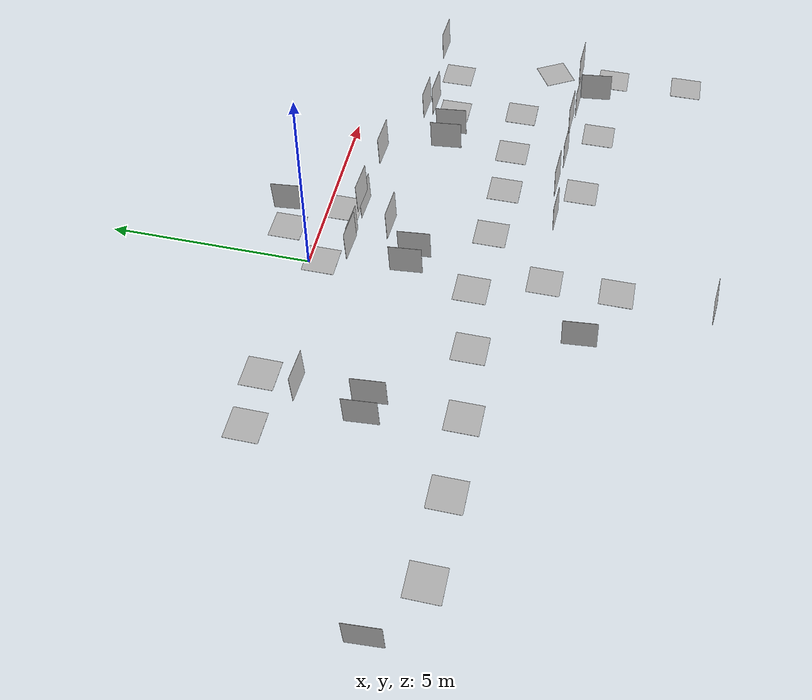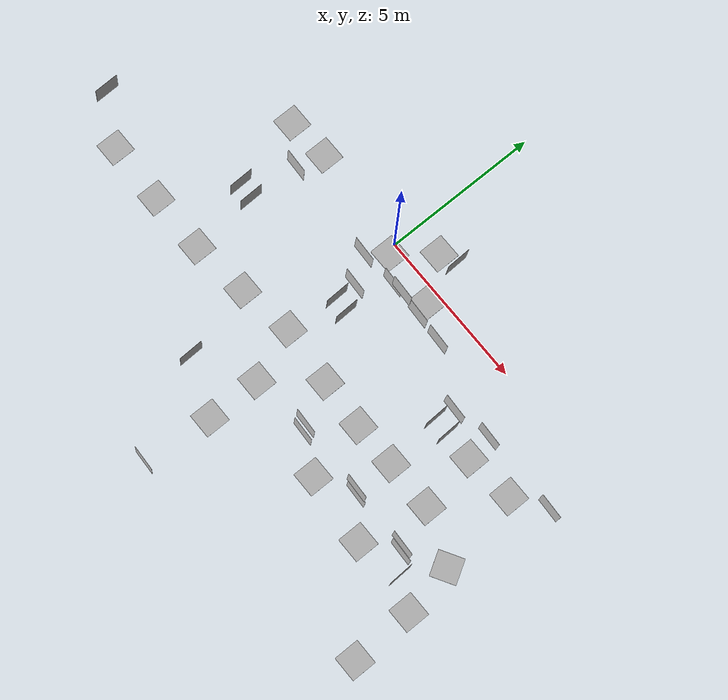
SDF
<sdf version="1.6">
 <world name="factory">
  <model name="deletion_wall">
   <static>1</static>
   <link name="sensing_link">
    <gravity>0</gravity>
    <sensor name="object_disposal_contact" type="contact">
     <update_rate>10</update_rate>
     <contact><collision>collision</collision><topic>__default_topic__</topic></contact>
    </sensor>
    <collision name="collision"><geometry><box><size>0.1 1 1</size></box></geometry></collision>
    <visual name="visual">
     <geometry><box><size>0.1 1 1</size></box></geometry>
     <cast_shadows>0</cast_shadows>
     <transparency>100</transparency>
    </visual>
   </link>
   <plugin name="object_disposal_plugin" filename="libObjectDisposalPlugin.so">
    <contact_sensor_name>object_disposal_contact</contact_sensor_name>
    <contact_side_normal>1 0 0</contact_side_normal>
    <disposal_pose>30 30 0 0 0 0</disposal_pose>
    <update_rate>5</update_rate>
   </plugin>
   <pose>0.199032 -1.08981 0 0 -0 0</pose>
  </model>
  <model name="drone_collection_zone">
   <static>1</static>
   <link name="sensing_link">
    <gravity>0</gravity>
    <sensor name="object_disposal_contact" type="contact">
     <update_rate>10</update_rate>
     <contact><collision>collision</collision><topic>__default_topic__</topic></contact>
    </sensor>
    <collision name="collision"><geometry><box><size>0.1 2 2</size></box></geometry></collision>
   </link>
   <plugin name="object_disposal_plugin" filename="libObjectDisposalPlugin.so">
    <contact_sensor_name>object_disposal_contact</contact_sensor_name>
    <contacting_box_topic>/ariac/waiting_shipping_box</contacting_box_topic>
    <activation_topic>/ariac/drone_collection_zone/activate_deletion</activation_topic>
    <contact_side_normal>1 0 0</contact_side_normal>
    <disposal_pose>-7.5 -10 -0.5 0 0 0</disposal_pose>
    <update_rate>5</update_rate>
   </plugin>
   <pose>-0.093674 -2.00167 0 0 -0 0</pose>
  </model>
  <model name="kalibr_tag">
   <static>1</static>
   <link name="link">
    <inertial>
     <mass>0.1</mass>
     <inertia>
      <ixx>0.000166667</ixx>
      <iyy>0.000166667</iyy>
      <izz>0.000166667</izz>
      <ixy>0</ixy>
      <ixz>0</ixz>
      <iyz>0</iyz>
     </inertia>
    </inertial>
    <collision name="collision"><geometry><box><size>0.8 0.8 0.005</size></box></geometry></collision>
    <visual name="visual">
     <geometry><box><size>0.8 0.8 0.005</size></box></geometry>
     <material>
      <script>
       <uri>model://kalibr_tag/materials/scripts</uri>
       <uri>model://kalibr_tag/materials/textures</uri>
       <name>Kalibr_tag/Diffuse</name>
      </script>
     </material>
    </visual>
   </link>
   <pose>5.29378 -2.45747 0.424913 1.58264 0.057467 1.61346</pose>
  </model>
  <model name="kalibr_tag_clone">
   <static>1</static>
   <link name="link">
    <inertial>
     <mass>0.1</mass>
     <inertia>
      <ixx>0.000166667</ixx>
      <iyy>0.000166667</iyy>
      <izz>0.000166667</izz>
      <ixy>0</ixy>
      <ixz>0</ixz>
      <iyz>0</iyz>
     </inertia>
    </inertial>
    <collision name="collision"><geometry><box><size>0.8 0.8 0.005</size></box></geometry></collision>
    <visual name="visual">
     <geometry><box><size>0.8 0.8 0.005</size></box></geometry>
     <material>
      <script>
       <uri>model://kalibr_tag/materials/scripts</uri>
       <uri>model://kalibr_tag/materials/textures</uri>
       <name>Kalibr_tag/Diffuse</name>
      </script>
     </material>
    </visual>
   </link>
   <pose>-8.97605 -3.60098 0.427439 1.58264 0.057467 1.61346</pose>
  </model>
  <model name="kalibr_tag_clone_clone">
   <static>1</static>
   <link name="link">
    <inertial>
     <mass>0.1</mass>
     <inertia>
      <ixx>0.000166667</ixx>
      <iyy>0.000166667</iyy>
      <izz>0.000166667</izz>
      <ixy>0</ixy>
      <ixz>0</ixz>
      <iyz>0</iyz>
     </inertia>
    </inertial>
    <collision name="collision"><geometry><box><size>0.8 0.8 0.005</size></box></geometry></collision>
    <visual name="visual">
     <geometry><box><size>0.8 0.8 0.005</size></box></geometry>
     <material>
      <script>
       <uri>model://kalibr_tag/materials/scripts</uri>
       <uri>model://kalibr_tag/materials/textures</uri>
       <name>Kalibr_tag/Diffuse</name>
      </script>
     </material>
    </visual>
   </link>
   <pose>-1.11644 -6.6522 0.425339 1.58264 0.057467 1.61346</pose>
  </model>
  <model name="kalibr_tag_clone_0_clone_clone_clone_5">
   <static>1</static>
   <link name="link">
    <inertial>
     <mass>0.1</mass>
     <inertia>
      <ixx>0.000166667</ixx>
      <iyy>0.000166667</iyy>
      <izz>0.000166667</izz>
      <ixy>0</ixy>
      <ixz>0</ixz>
      <iyz>0</iyz>
     </inertia>
    </inertial>
    <collision name="collision"><geometry><box><size>0.8 0.8 0.005</size></box></geometry></collision>
    <visual name="visual">
     <geometry><box><size>0.8 0.8 0.005</size></box></geometry>
     <material>
      <script>
       <uri>model://kalibr_tag/materials/scripts</uri>
       <uri>model://kalibr_tag/materials/textures</uri>
       <name>Kalibr_tag/Diffuse</name>
      </script>
     </material>
    </visual>
   </link>
   <pose>0 -4 -0.000701 0 -0 0</pose>
  </model>
  <model name="kalibr_tag_clone_0_clone_clone_clone_3_clone">
   <static>1</static>
   <link name="link">
    <inertial>
     <mass>0.1</mass>
     <inertia>
      <ixx>0.000166667</ixx>
      <iyy>0.000166667</iyy>
      <izz>0.000166667</izz>
      <ixy>0</ixy>
      <ixz>0</ixz>
      <iyz>0</iyz>
     </inertia>
    </inertial>
    <collision name="collision"><geometry><box><size>0.8 0.8 0.005</size></box></geometry></collision>
    <visual name="visual">
     <geometry><box><size>0.8 0.8 0.005</size></box></geometry>
     <material>
      <script>
       <uri>model://kalibr_tag/materials/scripts</uri>
       <uri>model://kalibr_tag/materials/textures</uri>
       <name>Kalibr_tag/Diffuse</name>
      </script>
     </material>
    </visual>
   </link>
   <pose>7.74657 -2.2262 -0.000701 0 -0 0</pose>
  </model>
  <model name="kalibr_tag_clone_0_clone_clone_clone_3_clone_0">
   <static>1</static>
   <link name="link">
    <inertial>
     <mass>0.1</mass>
     <inertia>
      <ixx>0.000166667</ixx>
      <iyy>0.000166667</iyy>
      <izz>0.000166667</izz>
      <ixy>0</ixy>
      <ixz>0</ixz>
      <iyz>0</iyz>
     </inertia>
    </inertial>
    <collision name="collision"><geometry><box><size>0.8 0.8 0.005</size></box></geometry></collision>
    <visual name="visual">
     <geometry><box><size>0.8 0.8 0.005</size></box></geometry>
     <material>
      <script>
       <uri>model://kalibr_tag/materials/scripts</uri>
       <uri>model://kalibr_tag/materials/textures</uri>
       <name>Kalibr_tag/Diffuse</name>
      </script>
     </material>
    </visual>
   </link>
   <pose>4.90528 -4.20418 -0.000701 0 -0 0</pose>
  </model>
  <model name="kalibr_tag_clone_clone_clone_clone_clone_clone_clone_5">
   <static>1</static>
   <link name="link">
    <inertial>
     <mass>0.1</mass>
     <inertia>
      <ixx>0.000166667</ixx>
      <iyy>0.000166667</iyy>
      <izz>0.000166667</izz>
      <ixy>0</ixy>
      <ixz>0</ixz>
      <iyz>0</iyz>
     </inertia>
    </inertial>
    <collision name="collision"><geometry><box><size>0.8 0.8 0.005</size></box></geometry></collision>
    <visual name="visual">
     <geometry><box><size>0.8 0.8 0.005</size></box></geometry>
     <material>
      <script>
       <uri>model://kalibr_tag/materials/scripts</uri>
       <uri>model://kalibr_tag/materials/textures</uri>
       <name>Kalibr_tag/Diffuse</name>
      </script>
     </material>
    </visual>
   </link>
   <pose>0.473147 -9.60582 0.418062 1.62908 -0.00671 3.09537</pose>
  </model>
  <model name="kalibr_tag_clone_0_clone_clone_clone_clone_12">
   <static>1</static>
   <link name="link">
    <inertial>
     <mass>0.1</mass>
     <inertia>
      <ixx>0.000166667</ixx>
      <iyy>0.000166667</iyy>
      <izz>0.000166667</izz>
      <ixy>0</ixy>
      <ixz>0</ixz>
      <iyz>0</iyz>
     </inertia>
    </inertial>
    <collision name="collision"><geometry><box><size>0.8 0.8 0.005</size></box></geometry></collision>
    <visual name="visual">
     <geometry><box><size>0.8 0.8 0.005</size></box></geometry>
     <material>
      <script>
       <uri>model://kalibr_tag/materials/scripts</uri>
       <uri>model://kalibr_tag/materials/textures</uri>
       <name>Kalibr_tag/Diffuse</name>
      </script>
     </material>
    </visual>
   </link>
   <pose>1.87838 -4.14794 -0.000701 0 -0 0</pose>
  </model>
  <model name="kalibr_tag_clone_0_clone_clone_clone_14_clone_0_clone_1">
   <static>1</static>
   <link name="link">
    <inertial>
     <mass>0.1</mass>
     <inertia>
      <ixx>0.000166667</ixx>
      <iyy>0.000166667</iyy>
      <izz>0.000166667</izz>
      <ixy>0</ixy>
      <ixz>0</ixz>
      <iyz>0</iyz>
     </inertia>
    </inertial>
    <collision name="collision"><geometry><box><size>0.8 0.8 0.005</size></box></geometry></collision>
    <visual name="visual">
     <geometry><box><size>0.8 0.8 0.005</size></box></geometry>
     <material>
      <script>
       <uri>model://kalibr_tag/materials/scripts</uri>
       <uri>model://kalibr_tag/materials/textures</uri>
       <name>Kalibr_tag/Diffuse</name>
      </script>
     </material>
    </visual>
   </link>
   <pose>1.03293 0.830599 0.008694 0 -0 0</pose>
  </model>
  <model name="kalibr_tag_clone_0_clone_clone_clone_clone_10_clone_0">
   <static>1</static>
   <link name="link">
    <inertial>
     <mass>0.1</mass>
     <inertia>
      <ixx>0.000166667</ixx>
      <iyy>0.000166667</iyy>
      <izz>0.000166667</izz>
      <ixy>0</ixy>
      <ixz>0</ixz>
      <iyz>0</iyz>
     </inertia>
    </inertial>
    <collision name="collision"><geometry><box><size>0.8 0.8 0.005</size></box></geometry></collision>
    <visual name="visual">
     <geometry><box><size>0.8 0.8 0.005</size></box></geometry>
     <material>
      <script>
       <uri>model://kalibr_tag/materials/scripts</uri>
       <uri>model://kalibr_tag/materials/textures</uri>
       <name>Kalibr_tag/Diffuse</name>
      </script>
     </material>
    </visual>
   </link>
   <pose>8.45464 -6.51419 -0.000701 0 -0 0</pose>
  </model>
  <model name="kalibr_tag_clone_0_clone_clone_clone_clone_10_clone_17">
   <static>1</static>
   <link name="link">
    <inertial>
     <mass>0.1</mass>
     <inertia>
      <ixx>0.000166667</ixx>
      <iyy>0.000166667</iyy>
      <izz>0.000166667</izz>
      <ixy>0</ixy>
      <ixz>0</ixz>
      <iyz>0</iyz>
     </inertia>
    </inertial>
    <collision name="collision"><geometry><box><size>0.8 0.8 0.005</size></box></geometry></collision>
    <visual name="visual">
     <geometry><box><size>0.8 0.8 0.005</size></box></geometry>
     <material>
      <script>
       <uri>model://kalibr_tag/materials/scripts</uri>
       <uri>model://kalibr_tag/materials/textures</uri>
       <name>Kalibr_tag/Diffuse</name>
      </script>
     </material>
    </visual>
   </link>
   <pose>6.19945 -2.3997 -0.000701 0 -0 0</pose>
  </model>
  <model name="kalibr_tag_clone_0_clone_clone_clone_clone_10_clone_18">
   <static>1</static>
   <link name="link">
    <inertial>
     <mass>0.1</mass>
     <inertia>
      <ixx>0.000166667</ixx>
      <iyy>0.000166667</iyy>
      <izz>0.000166667</izz>
      <ixy>0</ixy>
      <ixz>0</ixz>
      <iyz>0</iyz>
     </inertia>
    </inertial>
    <collision name="collision"><geometry><box><size>0.8 0.8 0.005</size></box></geometry></collision>
    <visual name="visual">
     <geometry><box><size>0.8 0.8 0.005</size></box></geometry>
     <material>
      <script>
       <uri>model://kalibr_tag/materials/scripts</uri>
       <uri>model://kalibr_tag/materials/textures</uri>
       <name>Kalibr_tag/Diffuse</name>
      </script>
     </material>
    </visual>
   </link>
   <pose>6.48025 -4.21009 -0.000701 0 -0 0</pose>
  </model>
  <model name="kalibr_tag_clone_0_clone_clone_clone_clone_10_clone_19">
   <static>1</static>
   <link name="link">
    <inertial>
     <mass>0.1</mass>
     <inertia>
      <ixx>0.000166667</ixx>
      <iyy>0.000166667</iyy>
      <izz>0.000166667</izz>
      <ixy>0</ixy>
      <ixz>0</ixz>
      <iyz>0</iyz>
     </inertia>
    </inertial>
    <collision name="collision"><geometry><box><size>0.8 0.8 0.005</size></box></geometry></collision>
    <visual name="visual">
     <geometry><box><size>0.8 0.8 0.005</size></box></geometry>
     <material>
      <script>
       <uri>model://kalibr_tag/materials/scripts</uri>
       <uri>model://kalibr_tag/materials/textures</uri>
       <name>Kalibr_tag/Diffuse</name>
      </script>
     </material>
    </visual>
   </link>
   <pose>3.46983 -4.22858 -0.000701 0 -0 0</pose>
  </model>
  <model name="kalibr_tag_clone_0_clone_clone_clone_clone_10_clone_20">
   <static>1</static>
   <link name="link">
    <inertial>
     <mass>0.1</mass>
     <inertia>
      <ixx>0.000166667</ixx>
      <iyy>0.000166667</iyy>
      <izz>0.000166667</izz>
      <ixy>0</ixy>
      <ixz>0</ixz>
      <iyz>0</iyz>
     </inertia>
    </inertial>
    <collision name="collision"><geometry><box><size>0.8 0.8 0.005</size></box></geometry></collision>
    <visual name="visual">
     <geometry><box><size>0.8 0.8 0.005</size></box></geometry>
     <material>
      <script>
       <uri>model://kalibr_tag/materials/scripts</uri>
       <uri>model://kalibr_tag/materials/textures</uri>
       <name>Kalibr_tag/Diffuse</name>
      </script>
     </material>
    </visual>
   </link>
   <pose>0.616517 -5.65644 -0.000701 0 -0 0</pose>
  </model>
  <model name="kalibr_tag_clone_0_clone_clone_clone_clone_10_clone_21">
   <static>1</static>
   <link name="link">
    <inertial>
     <mass>0.1</mass>
     <inertia>
      <ixx>0.000166667</ixx>
      <iyy>0.000166667</iyy>
      <izz>0.000166667</izz>
      <ixy>0</ixy>
      <ixz>0</ixz>
      <iyz>0</iyz>
     </inertia>
    </inertial>
    <collision name="collision"><geometry><box><size>0.8 0.8 0.005</size></box></geometry></collision>
    <visual name="visual">
     <geometry><box><size>0.8 0.8 0.005</size></box></geometry>
     <material>
      <script>
       <uri>model://kalibr_tag/materials/scripts</uri>
       <uri>model://kalibr_tag/materials/textures</uri>
       <name>Kalibr_tag/Diffuse</name>
      </script>
     </material>
    </visual>
   </link>
   <pose>0.615437 -7.37455 -0.000701 0 -0 0</pose>
  </model>
  <model name="kalibr_tag_clone_0_clone_clone_clone_clone_10_clone_22">
   <static>1</static>
   <link name="link">
    <inertial>
     <mass>0.1</mass>
     <inertia>
      <ixx>0.000166667</ixx>
      <iyy>0.000166667</iyy>
      <izz>0.000166667</izz>
      <ixy>0</ixy>
      <ixz>0</ixz>
      <iyz>0</iyz>
     </inertia>
    </inertial>
    <collision name="collision"><geometry><box><size>0.8 0.8 0.005</size></box></geometry></collision>
    <visual name="visual">
     <geometry><box><size>0.8 0.8 0.005</size></box></geometry>
     <material>
      <script>
       <uri>model://kalibr_tag/materials/scripts</uri>
       <uri>model://kalibr_tag/materials/textures</uri>
       <name>Kalibr_tag/Diffuse</name>
      </script>
     </material>
    </visual>
   </link>
   <pose>-1.73683 -4.2916 -0.000701 0 -0 0</pose>
  </model>
  <model name="kalibr_tag_clone_0_clone_clone_clone_clone_10_clone_23">
   <static>1</static>
   <link name="link">
    <inertial>
     <mass>0.1</mass>
     <inertia>
      <ixx>0.000166667</ixx>
      <iyy>0.000166667</iyy>
      <izz>0.000166667</izz>
      <ixy>0</ixy>
      <ixz>0</ixz>
      <iyz>0</iyz>
     </inertia>
    </inertial>
    <collision name="collision"><geometry><box><size>0.8 0.8 0.005</size></box></geometry></collision>
    <visual name="visual">
     <geometry><box><size>0.8 0.8 0.005</size></box></geometry>
     <material>
      <script>
       <uri>model://kalibr_tag/materials/scripts</uri>
       <uri>model://kalibr_tag/materials/textures</uri>
       <name>Kalibr_tag/Diffuse</name>
      </script>
     </material>
    </visual>
   </link>
   <pose>-3.60829 -4.49725 -0.000701 0 -0 0</pose>
  </model>
  <model name="kalibr_tag_clone_0_clone_clone_clone_clone_10_clone_24">
   <static>1</static>
   <link name="link">
    <inertial>
     <mass>0.1</mass>
     <inertia>
      <ixx>0.000166667</ixx>
      <iyy>0.000166667</iyy>
      <izz>0.000166667</izz>
      <ixy>0</ixy>
      <ixz>0</ixz>
      <iyz>0</iyz>
     </inertia>
    </inertial>
    <collision name="collision"><geometry><box><size>0.8 0.8 0.005</size></box></geometry></collision>
    <visual name="visual">
     <geometry><box><size>0.8 0.8 0.005</size></box></geometry>
     <material>
      <script>
       <uri>model://kalibr_tag/materials/scripts</uri>
       <uri>model://kalibr_tag/materials/textures</uri>
       <name>Kalibr_tag/Diffuse</name>
      </script>
     </material>
    </visual>
   </link>
   <pose>-5.52461 -4.51224 -0.000701 0 -0 0</pose>
  </model>
  <model name="kalibr_tag_clone_0_clone_clone_clone_clone_10_clone_25">
   <static>1</static>
   <link name="link">
    <inertial>
     <mass>0.1</mass>
     <inertia>
      <ixx>0.000166667</ixx>
      <iyy>0.000166667</iyy>
      <izz>0.000166667</izz>
      <ixy>0</ixy>
      <ixz>0</ixz>
      <iyz>0</iyz>
     </inertia>
    </inertial>
    <collision name="collision"><geometry><box><size>0.8 0.8 0.005</size></box></geometry></collision>
    <visual name="visual">
     <geometry><box><size>0.8 0.8 0.005</size></box></geometry>
     <material>
      <script>
       <uri>model://kalibr_tag/materials/scripts</uri>
       <uri>model://kalibr_tag/materials/textures</uri>
       <name>Kalibr_tag/Diffuse</name>
      </script>
     </material>
    </visual>
   </link>
   <pose>-7.50883 -4.47579 -0.000701 0 -0 0</pose>
  </model>
  <model name="kalibr_tag_clone_0_clone_clone_clone_clone_10_clone_26">
   <static>1</static>
   <link name="link">
    <inertial>
     <mass>0.1</mass>
     <inertia>
      <ixx>0.000166667</ixx>
      <iyy>0.000166667</iyy>
      <izz>0.000166667</izz>
      <ixy>0</ixy>
      <ixz>0</ixz>
      <iyz>0</iyz>
     </inertia>
    </inertial>
    <collision name="collision"><geometry><box><size>0.8 0.8 0.005</size></box></geometry></collision>
    <visual name="visual">
     <geometry><box><size>0.8 0.8 0.005</size></box></geometry>
     <material>
      <script>
       <uri>model://kalibr_tag/materials/scripts</uri>
       <uri>model://kalibr_tag/materials/textures</uri>
       <name>Kalibr_tag/Diffuse</name>
      </script>
     </material>
    </visual>
   </link>
   <pose>3.80341 -6.15471 -0.000701 0 -0 0</pose>
  </model>
  <model name="kalibr_tag_clone_0_clone_clone_clone_clone_10_clone_27">
   <static>1</static>
   <link name="link">
    <inertial>
     <mass>0.1</mass>
     <inertia>
      <ixx>0.000166667</ixx>
      <iyy>0.000166667</iyy>
      <izz>0.000166667</izz>
      <ixy>0</ixy>
      <ixz>0</ixz>
      <iyz>0</iyz>
     </inertia>
    </inertial>
    <collision name="collision"><geometry><box><size>0.8 0.8 0.005</size></box></geometry></collision>
    <visual name="visual">
     <geometry><box><size>0.8 0.8 0.005</size></box></geometry>
     <material>
      <script>
       <uri>model://kalibr_tag/materials/scripts</uri>
       <uri>model://kalibr_tag/materials/textures</uri>
       <name>Kalibr_tag/Diffuse</name>
      </script>
     </material>
    </visual>
   </link>
   <pose>6.04403 -6.34803 -0.000701 0 -0 0</pose>
  </model>
  <model name="kalibr_tag_clone_0_clone_clone_clone_clone_10_clone_1_clone">
   <static>1</static>
   <link name="link">
    <inertial>
     <mass>0.1</mass>
     <inertia>
      <ixx>0.000166667</ixx>
      <iyy>0.000166667</iyy>
      <izz>0.000166667</izz>
      <ixy>0</ixy>
      <ixz>0</ixz>
      <iyz>0</iyz>
     </inertia>
    </inertial>
    <collision name="collision"><geometry><box><size>0.8 0.8 0.005</size></box></geometry></collision>
    <visual name="visual">
     <geometry><box><size>0.8 0.8 0.005</size></box></geometry>
     <material>
      <script>
       <uri>model://kalibr_tag/materials/scripts</uri>
       <uri>model://kalibr_tag/materials/textures</uri>
       <name>Kalibr_tag/Diffuse</name>
      </script>
     </material>
    </visual>
   </link>
   <pose>8.53271 -8.51507 -0.000701 0 -0 0</pose>
  </model>
  <model name="kalibr_tag_clone_clone_clone_clone_clone_clone_clone_2_clone_clone_0">
   <static>1</static>
   <link name="link">
    <inertial>
     <mass>0.1</mass>
     <inertia>
      <ixx>0.000166667</ixx>
      <iyy>0.000166667</iyy>
      <izz>0.000166667</izz>
      <ixy>0</ixy>
      <ixz>0</ixz>
      <iyz>0</iyz>
     </inertia>
    </inertial>
    <collision name="collision"><geometry><box><size>0.8 0.8 0.005</size></box></geometry></collision>
    <visual name="visual">
     <geometry><box><size>0.8 0.8 0.005</size></box></geometry>
     <material>
      <script>
       <uri>model://kalibr_tag/materials/scripts</uri>
       <uri>model://kalibr_tag/materials/textures</uri>
       <name>Kalibr_tag/Diffuse</name>
      </script>
     </material>
    </visual>
   </link>
   <pose>8.73948 -1.64008 0.425094 1.62908 -0.00671 3.09537</pose>
  </model>
  <model name="kalibr_tag_clone_clone_clone_clone_clone_clone_clone_2_clone_clone_1">
   <static>1</static>
   <link name="link">
    <inertial>
     <mass>0.1</mass>
     <inertia>
      <ixx>0.000166667</ixx>
      <iyy>0.000166667</iyy>
      <izz>0.000166667</izz>
      <ixy>0</ixy>
      <ixz>0</ixz>
      <iyz>0</iyz>
     </inertia>
    </inertial>
    <collision name="collision"><geometry><box><size>0.8 0.8 0.005</size></box></geometry></collision>
    <visual name="visual">
     <geometry><box><size>0.8 0.8 0.005</size></box></geometry>
     <material>
      <script>
       <uri>model://kalibr_tag/materials/scripts</uri>
       <uri>model://kalibr_tag/materials/textures</uri>
       <name>Kalibr_tag/Diffuse</name>
      </script>
     </material>
    </visual>
   </link>
   <pose>6.0988 -1.62713 0.425094 1.62908 -0.00671 3.09537</pose>
  </model>
  <model name="kalibr_tag_clone_0">
   <static>1</static>
   <link name="link">
    <inertial>
     <mass>0.1</mass>
     <inertia>
      <ixx>0.000166667</ixx>
      <iyy>0.000166667</iyy>
      <izz>0.000166667</izz>
      <ixy>0</ixy>
      <ixz>0</ixz>
      <iyz>0</iyz>
     </inertia>
    </inertial>
    <collision name="collision"><geometry><box><size>0.8 0.8 0.005</size></box></geometry></collision>
    <visual name="visual">
     <geometry><box><size>0.8 0.8 0.005</size></box></geometry>
     <material>
      <script>
       <uri>model://kalibr_tag/materials/scripts</uri>
       <uri>model://kalibr_tag/materials/textures</uri>
       <name>Kalibr_tag/Diffuse</name>
      </script>
     </material>
    </visual>
   </link>
   <pose>4.72554 -2.42704 0.424913 1.58264 0.057467 1.61346</pose>
  </model>
  <model name="kalibr_tag_clone_1">
   <static>1</static>
   <link name="link">
    <inertial>
     <mass>0.1</mass>
     <inertia>
      <ixx>0.000166667</ixx>
      <iyy>0.000166667</iyy>
      <izz>0.000166667</izz>
      <ixy>0</ixy>
      <ixz>0</ixz>
      <iyz>0</iyz>
     </inertia>
    </inertial>
    <collision name="collision"><geometry><box><size>0.8 0.8 0.005</size></box></geometry></collision>
    <visual name="visual">
     <geometry><box><size>0.8 0.8 0.005</size></box></geometry>
     <material>
      <script>
       <uri>model://kalibr_tag/materials/scripts</uri>
       <uri>model://kalibr_tag/materials/textures</uri>
       <name>Kalibr_tag/Diffuse</name>
      </script>
     </material>
    </visual>
   </link>
   <pose>0.741059 -2.44126 0.424913 1.58264 0.057467 1.61346</pose>
  </model>
  <model name="kalibr_tag_clone_2">
   <static>1</static>
   <link name="link">
    <inertial>
     <mass>0.1</mass>
     <inertia>
      <ixx>0.000166667</ixx>
      <iyy>0.000166667</iyy>
      <izz>0.000166667</izz>
      <ixy>0</ixy>
      <ixz>0</ixz>
      <iyz>0</iyz>
     </inertia>
    </inertial>
    <collision name="collision"><geometry><box><size>0.8 0.8 0.005</size></box></geometry></collision>
    <visual name="visual">
     <geometry><box><size>0.8 0.8 0.005</size></box></geometry>
     <material>
      <script>
       <uri>model://kalibr_tag/materials/scripts</uri>
       <uri>model://kalibr_tag/materials/textures</uri>
       <name>Kalibr_tag/Diffuse</name>
      </script>
     </material>
    </visual>
   </link>
   <pose>0.206201 -2.34565 0.424913 1.58264 0.057467 1.61346</pose>
  </model>
  <model name="kalibr_tag_clone_3">
   <static>1</static>
   <link name="link">
    <inertial>
     <mass>0.1</mass>
     <inertia>
      <ixx>0.000166667</ixx>
      <iyy>0.000166667</iyy>
      <izz>0.000166667</izz>
      <ixy>0</ixy>
      <ixz>0</ixz>
      <iyz>0</iyz>
     </inertia>
    </inertial>
    <collision name="collision"><geometry><box><size>0.8 0.8 0.005</size></box></geometry></collision>
    <visual name="visual">
     <geometry><box><size>0.8 0.8 0.005</size></box></geometry>
     <material>
      <script>
       <uri>model://kalibr_tag/materials/scripts</uri>
       <uri>model://kalibr_tag/materials/textures</uri>
       <name>Kalibr_tag/Diffuse</name>
      </script>
     </material>
    </visual>
   </link>
   <pose>-3.66917 -2.40516 0.424913 1.58264 0.057467 1.61346</pose>
  </model>
  <model name="kalibr_tag_clone_4">
   <static>1</static>
   <link name="link">
    <inertial>
     <mass>0.1</mass>
     <inertia>
      <ixx>0.000166667</ixx>
      <iyy>0.000166667</iyy>
      <izz>0.000166667</izz>
      <ixy>0</ixy>
      <ixz>0</ixz>
      <iyz>0</iyz>
     </inertia>
    </inertial>
    <collision name="collision"><geometry><box><size>0.8 0.8 0.005</size></box></geometry></collision>
    <visual name="visual">
     <geometry><box><size>0.8 0.8 0.005</size></box></geometry>
     <material>
      <script>
       <uri>model://kalibr_tag/materials/scripts</uri>
       <uri>model://kalibr_tag/materials/textures</uri>
       <name>Kalibr_tag/Diffuse</name>
      </script>
     </material>
    </visual>
   </link>
   <pose>-4.21677 -2.35283 0.424913 1.58264 0.057467 1.61346</pose>
  </model>
  <model name="kalibr_tag_clone_clone_clone_clone_clone_clone_clone_0_clone_clone_3">
   <static>1</static>
   <link name="link">
    <inertial>
     <mass>0.1</mass>
     <inertia>
      <ixx>0.000166667</ixx>
      <iyy>0.000166667</iyy>
      <izz>0.000166667</izz>
      <ixy>0</ixy>
      <ixz>0</ixz>
      <iyz>0</iyz>
     </inertia>
    </inertial>
    <collision name="collision"><geometry><box><size>0.8 0.8 0.005</size></box></geometry></collision>
    <visual name="visual">
     <geometry><box><size>0.8 0.8 0.005</size></box></geometry>
     <material>
      <script>
       <uri>model://kalibr_tag/materials/scripts</uri>
       <uri>model://kalibr_tag/materials/textures</uri>
       <name>Kalibr_tag/Diffuse</name>
      </script>
     </material>
    </visual>
   </link>
   <pose>2.70935 -5.53491 1.57688 1.62908 -0.00671 3.09537</pose>
  </model>
  <model name="kalibr_tag_clone_clone_clone_clone_clone_clone_clone_0_clone_clone_4">
   <static>1</static>
   <link name="link">
    <inertial>
     <mass>0.1</mass>
     <inertia>
      <ixx>0.000166667</ixx>
      <iyy>0.000166667</iyy>
      <izz>0.000166667</izz>
      <ixy>0</ixy>
      <ixz>0</ixz>
      <iyz>0</iyz>
     </inertia>
    </inertial>
    <collision name="collision"><geometry><box><size>0.8 0.8 0.005</size></box></geometry></collision>
    <visual name="visual">
     <geometry><box><size>0.8 0.8 0.005</size></box></geometry>
     <material>
      <script>
       <uri>model://kalibr_tag/materials/scripts</uri>
       <uri>model://kalibr_tag/materials/textures</uri>
       <name>Kalibr_tag/Diffuse</name>
      </script>
     </material>
    </visual>
   </link>
   <pose>4.98761 -5.57645 0.418062 1.62908 -0.00671 3.09537</pose>
  </model>
  <model name="kalibr_tag_clone_clone_clone_clone_clone_clone_clone_0_clone_clone_5">
   <static>1</static>
   <link name="link">
    <inertial>
     <mass>0.1</mass>
     <inertia>
      <ixx>0.000166667</ixx>
      <iyy>0.000166667</iyy>
      <izz>0.000166667</izz>
      <ixy>0</ixy>
      <ixz>0</ixz>
      <iyz>0</iyz>
     </inertia>
    </inertial>
    <collision name="collision"><geometry><box><size>0.8 0.8 0.005</size></box></geometry></collision>
    <visual name="visual">
     <geometry><box><size>0.8 0.8 0.005</size></box></geometry>
     <material>
      <script>
       <uri>model://kalibr_tag/materials/scripts</uri>
       <uri>model://kalibr_tag/materials/textures</uri>
       <name>Kalibr_tag/Diffuse</name>
      </script>
     </material>
    </visual>
   </link>
   <pose>7.03289 -5.6406 0.418062 1.62908 -0.00671 3.09537</pose>
  </model>
  <model name="kalibr_tag_clone_0_clone_clone_clone_clone_10_clone_18_clone">
   <static>1</static>
   <link name="link">
    <inertial>
     <mass>0.1</mass>
     <inertia>
      <ixx>0.000166667</ixx>
      <iyy>0.000166667</iyy>
      <izz>0.000166667</izz>
      <ixy>0</ixy>
      <ixz>0</ixz>
      <iyz>0</iyz>
     </inertia>
    </inertial>
    <collision name="collision"><geometry><box><size>0.8 0.8 0.005</size></box></geometry></collision>
    <visual name="visual">
     <geometry><box><size>0.8 0.8 0.005</size></box></geometry>
     <material>
      <script>
       <uri>model://kalibr_tag/materials/scripts</uri>
       <uri>model://kalibr_tag/materials/textures</uri>
       <name>Kalibr_tag/Diffuse</name>
      </script>
     </material>
    </visual>
   </link>
   <pose>8.17888 -4.89131 0.151521 0 -0 0.53317</pose>
  </model>
  <model name="kalibr_tag_clone_clone_clone_clone_clone_1_clone_clone_0_clone_1_clone">
   <static>1</static>
   <link name="link">
    <inertial>
     <mass>0.1</mass>
     <inertia>
      <ixx>0.000166667</ixx>
      <iyy>0.000166667</iyy>
      <izz>0.000166667</izz>
      <ixy>0</ixy>
      <ixz>0</ixz>
      <iyz>0</iyz>
     </inertia>
    </inertial>
    <collision name="collision"><geometry><box><size>0.8 0.8 0.005</size></box></geometry></collision>
    <visual name="visual">
     <geometry><box><size>0.8 0.8 0.005</size></box></geometry>
     <material>
      <script>
       <uri>model://kalibr_tag/materials/scripts</uri>
       <uri>model://kalibr_tag/materials/textures</uri>
       <name>Kalibr_tag/Diffuse</name>
      </script>
     </material>
    </visual>
   </link>
   <pose>7.52958 -6.07041 0.42669 1.58264 0.057467 1.61346</pose>
  </model>
  <model name="kalibr_tag_clone_clone_clone_clone_clone_clone_clone_0_clone_0_clone_clone">
   <static>1</static>
   <link name="link">
    <inertial>
     <mass>0.1</mass>
     <inertia>
      <ixx>0.000166667</ixx>
      <iyy>0.000166667</iyy>
      <izz>0.000166667</izz>
      <ixy>0</ixy>
      <ixz>0</ixz>
      <iyz>0</iyz>
     </inertia>
    </inertial>
    <collision name="collision"><geometry><box><size>0.8 0.8 0.005</size></box></geometry></collision>
    <visual name="visual">
     <geometry><box><size>0.8 0.8 0.005</size></box></geometry>
     <material>
      <script>
       <uri>model://kalibr_tag/materials/scripts</uri>
       <uri>model://kalibr_tag/materials/textures</uri>
       <name>Kalibr_tag/Diffuse</name>
      </script>
     </material>
    </visual>
   </link>
   <pose>0.920366 -0.850271 0.418062 1.62908 -0.00671 3.09537</pose>
  </model>
  <model name="kalibr_tag_clone_clone_clone_clone_clone_clone_clone_0_clone_0_clone_clone_0">
   <static>1</static>
   <link name="link">
    <inertial>
     <mass>0.1</mass>
     <inertia>
      <ixx>0.000166667</ixx>
      <iyy>0.000166667</iyy>
      <izz>0.000166667</izz>
      <ixy>0</ixy>
      <ixz>0</ixz>
      <iyz>0</iyz>
     </inertia>
    </inertial>
    <collision name="collision"><geometry><box><size>0.8 0.8 0.005</size></box></geometry></collision>
    <visual name="visual">
     <geometry><box><size>0.8 0.8 0.005</size></box></geometry>
     <material>
      <script>
       <uri>model://kalibr_tag/materials/scripts</uri>
       <uri>model://kalibr_tag/materials/textures</uri>
       <name>Kalibr_tag/Diffuse</name>
      </script>
     </material>
    </visual>
   </link>
   <pose>-3.60577 -0.776587 0.418062 1.62908 -0.00671 3.09537</pose>
  </model>
  <model name="kalibr_tag_clone_0_clone_clone_clone_13_clone">
   <static>1</static>
   <link name="link">
    <inertial>
     <mass>0.1</mass>
     <inertia>
      <ixx>0.000166667</ixx>
      <iyy>0.000166667</iyy>
      <izz>0.000166667</izz>
      <ixy>0</ixy>
      <ixz>0</ixz>
      <iyz>0</iyz>
     </inertia>
    </inertial>
    <collision name="collision"><geometry><box><size>0.8 0.8 0.005</size></box></geometry></collision>
    <visual name="visual">
     <geometry><box><size>0.8 0.8 0.005</size></box></geometry>
     <material>
      <script>
       <uri>model://kalibr_tag/materials/scripts</uri>
       <uri>model://kalibr_tag/materials/textures</uri>
       <name>Kalibr_tag/Diffuse</name>
      </script>
     </material>
    </visual>
   </link>
   <pose>-3.4257 0.142816 -0.000701 0 -0 0</pose>
  </model>
  <model name="kalibr_tag_clone_0_clone_clone_clone_13_clone_0">
   <static>1</static>
   <link name="link">
    <inertial>
     <mass>0.1</mass>
     <inertia>
      <ixx>0.000166667</ixx>
      <iyy>0.000166667</iyy>
      <izz>0.000166667</izz>
      <ixy>0</ixy>
      <ixz>0</ixz>
      <iyz>0</iyz>
     </inertia>
    </inertial>
    <collision name="collision"><geometry><box><size>0.8 0.8 0.005</size></box></geometry></collision>
    <visual name="visual">
     <geometry><box><size>0.8 0.8 0.005</size></box></geometry>
     <material>
      <script>
       <uri>model://kalibr_tag/materials/scripts</uri>
       <uri>model://kalibr_tag/materials/textures</uri>
       <name>Kalibr_tag/Diffuse</name>
      </script>
     </material>
    </visual>
   </link>
   <pose>-4.80645 0.049478 -0.000701 0 -0 0</pose>
  </model>
  <model name="kalibr_tag_clone_clone_clone_clone_clone_1_clone_clone_0_clone_clone_1">
   <static>1</static>
   <link name="link">
    <inertial>
     <mass>0.1</mass>
     <inertia>
      <ixx>0.000166667</ixx>
      <iyy>0.000166667</iyy>
      <izz>0.000166667</izz>
      <ixy>0</ixy>
      <ixz>0</ixz>
      <iyz>0</iyz>
     </inertia>
    </inertial>
    <collision name="collision"><geometry><box><size>0.8 0.8 0.005</size></box></geometry></collision>
    <visual name="visual">
     <geometry><box><size>0.8 0.8 0.005</size></box></geometry>
     <material>
      <script>
       <uri>model://kalibr_tag/materials/scripts</uri>
       <uri>model://kalibr_tag/materials/textures</uri>
       <name>Kalibr_tag/Diffuse</name>
      </script>
     </material>
    </visual>
   </link>
   <pose>1.62931 0.974584 0.42669 1.58264 0.057467 1.61346</pose>
  </model>
  <model name="kalibr_tag_clone_clone_clone_clone_clone_clone_clone_0_clone_clone_4_clone">
   <static>1</static>
   <link name="link">
    <inertial>
     <mass>0.1</mass>
     <inertia>
      <ixx>0.000166667</ixx>
      <iyy>0.000166667</iyy>
      <izz>0.000166667</izz>
      <ixy>0</ixy>
      <ixz>0</ixz>
      <iyz>0</iyz>
     </inertia>
    </inertial>
    <collision name="collision"><geometry><box><size>0.8 0.8 0.005</size></box></geometry></collision>
    <visual name="visual">
     <geometry><box><size>0.8 0.8 0.005</size></box></geometry>
     <material>
      <script>
       <uri>model://kalibr_tag/materials/scripts</uri>
       <uri>model://kalibr_tag/materials/textures</uri>
       <name>Kalibr_tag/Diffuse</name>
      </script>
     </material>
    </visual>
   </link>
   <pose>2.6624 -5.61464 0.418062 1.62908 -0.00671 3.09537</pose>
  </model>
  <model name="kalibr_tag_clone_clone_clone_clone_clone_clone_clone_0_clone_clone_3_clone">
   <static>1</static>
   <link name="link">
    <inertial>
     <mass>0.1</mass>
     <inertia>
      <ixx>0.000166667</ixx>
      <iyy>0.000166667</iyy>
      <izz>0.000166667</izz>
      <ixy>0</ixy>
      <ixz>0</ixz>
      <iyz>0</iyz>
     </inertia>
    </inertial>
    <collision name="collision"><geometry><box><size>0.8 0.8 0.005</size></box></geometry></collision>
    <visual name="visual">
     <geometry><box><size>0.8 0.8 0.005</size></box></geometry>
     <material>
      <script>
       <uri>model://kalibr_tag/materials/scripts</uri>
       <uri>model://kalibr_tag/materials/textures</uri>
       <name>Kalibr_tag/Diffuse</name>
      </script>
     </material>
    </visual>
   </link>
   <pose>4.99275 -5.58975 1.57688 1.62908 -0.00671 3.09537</pose>
  </model>
  <model name="kalibr_tag_clone_clone_clone_clone_clone_clone_clone_0_clone_clone_3_clone_0">
   <static>1</static>
   <link name="link">
    <inertial>
     <mass>0.1</mass>
     <inertia>
      <ixx>0.000166667</ixx>
      <iyy>0.000166667</iyy>
      <izz>0.000166667</izz>
      <ixy>0</ixy>
      <ixz>0</ixz>
      <iyz>0</iyz>
     </inertia>
    </inertial>
    <collision name="collision"><geometry><box><size>0.8 0.8 0.005</size></box></geometry></collision>
    <visual name="visual">
     <geometry><box><size>0.8 0.8 0.005</size></box></geometry>
     <material>
      <script>
       <uri>model://kalibr_tag/materials/scripts</uri>
       <uri>model://kalibr_tag/materials/textures</uri>
       <name>Kalibr_tag/Diffuse</name>
      </script>
     </material>
    </visual>
   </link>
   <pose>6.98219 -5.61979 1.57688 1.62908 -0.00671 3.09537</pose>
  </model>
  <model name="kalibr_tag_clone_clone_clone_clone_clone_clone_clone_0_clone_clone_3_clone_1">
   <static>1</static>
   <link name="link">
    <inertial>
     <mass>0.1</mass>
     <inertia>
      <ixx>0.000166667</ixx>
      <iyy>0.000166667</iyy>
      <izz>0.000166667</izz>
      <ixy>0</ixy>
      <ixz>0</ixz>
      <iyz>0</iyz>
     </inertia>
    </inertial>
    <collision name="collision"><geometry><box><size>0.8 0.8 0.005</size></box></geometry></collision>
    <visual name="visual">
     <geometry><box><size>0.8 0.8 0.005</size></box></geometry>
     <material>
      <script>
       <uri>model://kalibr_tag/materials/scripts</uri>
       <uri>model://kalibr_tag/materials/textures</uri>
       <name>Kalibr_tag/Diffuse</name>
      </script>
     </material>
    </visual>
   </link>
   <pose>0.483214 -1.94121 1.57688 1.62908 -0.00671 3.09537</pose>
  </model>
  <model name="kalibr_tag_clone_clone_clone_clone_clone_clone_clone_0_clone_clone_3_clone_2">
   <static>1</static>
   <link name="link">
    <inertial>
     <mass>0.1</mass>
     <inertia>
      <ixx>0.000166667</ixx>
      <iyy>0.000166667</iyy>
      <izz>0.000166667</izz>
      <ixy>0</ixy>
      <ixz>0</ixz>
      <iyz>0</iyz>
     </inertia>
    </inertial>
    <collision name="collision"><geometry><box><size>0.8 0.8 0.005</size></box></geometry></collision>
    <visual name="visual">
     <geometry><box><size>0.8 0.8 0.005</size></box></geometry>
     <material>
      <script>
       <uri>model://kalibr_tag/materials/scripts</uri>
       <uri>model://kalibr_tag/materials/textures</uri>
       <name>Kalibr_tag/Diffuse</name>
      </script>
     </material>
    </visual>
   </link>
   <pose>5.00659 -2.08928 1.57688 1.62908 -0.00671 3.09537</pose>
  </model>
  <model name="kalibr_tag_clone_0_clone_clone_clone_14_clone_0_clone_1_clone">
   <static>1</static>
   <link name="link">
    <inertial>
     <mass>0.1</mass>
     <inertia>
      <ixx>0.000166667</ixx>
      <iyy>0.000166667</iyy>
      <izz>0.000166667</izz>
      <ixy>0</ixy>
      <ixz>0</ixz>
      <iyz>0</iyz>
     </inertia>
    </inertial>
    <collision name="collision"><geometry><box><size>0.8 0.8 0.005</size></box></geometry></collision>
    <visual name="visual">
     <geometry><box><size>0.8 0.8 0.005</size></box></geometry>
     <material>
      <script>
       <uri>model://kalibr_tag/materials/scripts</uri>
       <uri>model://kalibr_tag/materials/textures</uri>
       <name>Kalibr_tag/Diffuse</name>
      </script>
     </material>
    </visual>
   </link>
   <pose>0.12085 -0.282853 0.008694 0 -0 0</pose>
  </model>
  <model name="kalibr_tag_clone_0_clone_clone_clone_14_clone_0_clone_1_clone_0">
   <static>1</static>
   <link name="link">
    <inertial>
     <mass>0.1</mass>
     <inertia>
      <ixx>0.000166667</ixx>
      <iyy>0.000166667</iyy>
      <izz>0.000166667</izz>
      <ixy>0</ixy>
      <ixz>0</ixz>
      <iyz>0</iyz>
     </inertia>
    </inertial>
    <collision name="collision"><geometry><box><size>0.8 0.8 0.005</size></box></geometry></collision>
    <visual name="visual">
     <geometry><box><size>0.8 0.8 0.005</size></box></geometry>
     <material>
      <script>
       <uri>model://kalibr_tag/materials/scripts</uri>
       <uri>model://kalibr_tag/materials/textures</uri>
       <name>Kalibr_tag/Diffuse</name>
      </script>
     </material>
    </visual>
   </link>
   <pose>1.93902 -0.406939 0.008694 0 -0 0</pose>
  </model>
  <model name="kalibr_tag_clone_clone_clone_clone_clone_clone_clone_0_clone_clone_3_clone_1_clone">
   <static>1</static>
   <link name="link">
    <inertial>
     <mass>0.1</mass>
     <inertia>
      <ixx>0.000166667</ixx>
      <iyy>0.000166667</iyy>
      <izz>0.000166667</izz>
      <ixy>0</ixy>
      <ixz>0</ixz>
      <iyz>0</iyz>
     </inertia>
    </inertial>
    <collision name="collision"><geometry><box><size>0.8 0.8 0.005</size></box></geometry></collision>
    <visual name="visual">
     <geometry><box><size>0.8 0.8 0.005</size></box></geometry>
     <material>
      <script>
       <uri>model://kalibr_tag/materials/scripts</uri>
       <uri>model://kalibr_tag/materials/textures</uri>
       <name>Kalibr_tag/Diffuse</name>
      </script>
     </material>
    </visual>
   </link>
   <pose>1.43683 -0.991192 1.31861 1.62908 -0.00671 3.09537</pose>
  </model>
  <model name="kalibr_tag_clone_clone_clone_clone_clone_clone_clone_0_clone_clone_3_clone_1_clone_clone">
   <static>1</static>
   <link name="link">
    <inertial>
     <mass>0.1</mass>
     <inertia>
      <ixx>0.000166667</ixx>
      <iyy>0.000166667</iyy>
      <izz>0.000166667</izz>
      <ixy>0</ixy>
      <ixz>0</ixz>
      <iyz>0</iyz>
     </inertia>
    </inertial>
    <collision name="collision"><geometry><box><size>0.8 0.8 0.005</size></box></geometry></collision>
    <visual name="visual">
     <geometry><box><size>0.8 0.8 0.005</size></box></geometry>
     <material>
      <script>
       <uri>model://kalibr_tag/materials/scripts</uri>
       <uri>model://kalibr_tag/materials/textures</uri>
       <name>Kalibr_tag/Diffuse</name>
      </script>
     </material>
    </visual>
   </link>
   <pose>-0.113606 -1.10885 1.31861 1.62908 -0.00671 3.09537</pose>
  </model>
  <model name="kalibr_tag_clone_clone_clone_clone_clone_clone_clone_0_clone_clone_3_clone_1_clone_clone_0">
   <static>1</static>
   <link name="link">
    <inertial>
     <mass>0.1</mass>
     <inertia>
      <ixx>0.000166667</ixx>
      <iyy>0.000166667</iyy>
      <izz>0.000166667</izz>
      <ixy>0</ixy>
      <ixz>0</ixz>
      <iyz>0</iyz>
     </inertia>
    </inertial>
    <collision name="collision"><geometry><box><size>0.8 0.8 0.005</size></box></geometry></collision>
    <visual name="visual">
     <geometry><box><size>0.8 0.8 0.005</size></box></geometry>
     <material>
      <script>
       <uri>model://kalibr_tag/materials/scripts</uri>
       <uri>model://kalibr_tag/materials/textures</uri>
       <name>Kalibr_tag/Diffuse</name>
      </script>
     </material>
    </visual>
   </link>
   <pose>3.15333 -1.117 1.31861 1.62908 -0.00671 3.09537</pose>
  </model>
  <model name="kalibr_tag_clone_clone_clone_clone_clone_clone_clone_0_clone_0_clone_clone_clone">
   <static>1</static>
   <link name="link">
    <inertial>
     <mass>0.1</mass>
     <inertia>
      <ixx>0.000166667</ixx>
      <iyy>0.000166667</iyy>
      <izz>0.000166667</izz>
      <ixy>0</ixy>
      <ixz>0</ixz>
      <iyz>0</iyz>
     </inertia>
    </inertial>
    <collision name="collision"><geometry><box><size>0.8 0.8 0.005</size></box></geometry></collision>
    <visual name="visual">
     <geometry><box><size>0.8 0.8 0.005</size></box></geometry>
     <material>
      <script>
       <uri>model://kalibr_tag/materials/scripts</uri>
       <uri>model://kalibr_tag/materials/textures</uri>
       <name>Kalibr_tag/Diffuse</name>
      </script>
     </material>
    </visual>
   </link>
   <pose>2.08554 -0.893599 0.418062 1.62908 -0.00671 3.09537</pose>
  </model>
 </world>
</sdf>
